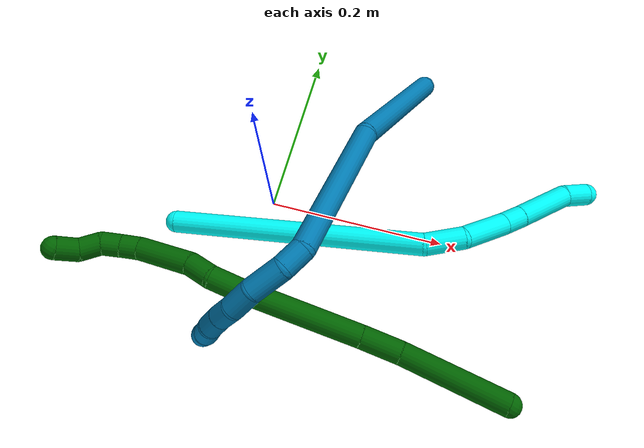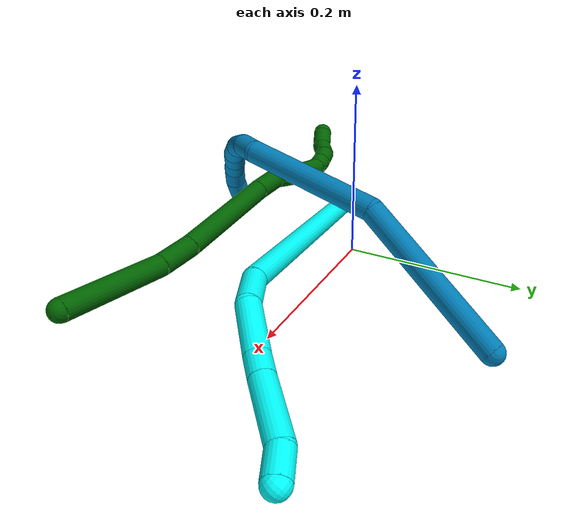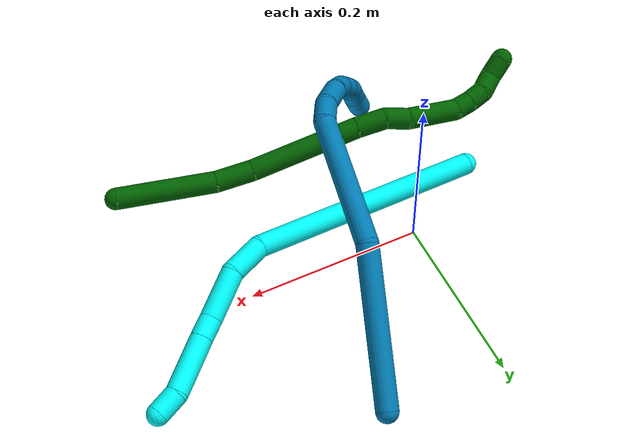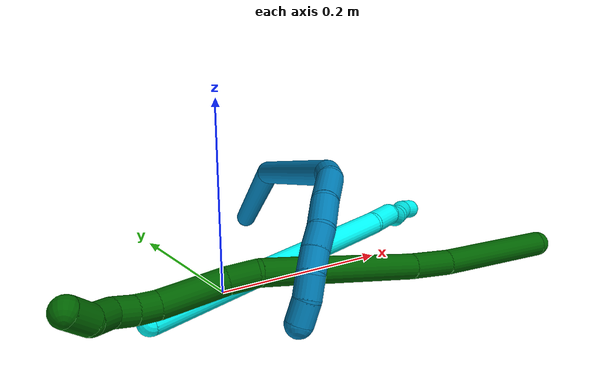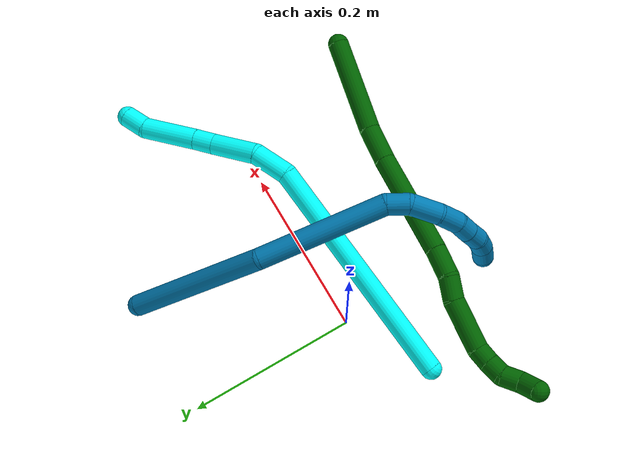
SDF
<sdf version="1.7">
 <world name="default">
  <model name="photoneo_s_sensor">
   <static>1</static>
   <pose>0 0 2 1.57079 1.57079 3.14159</pose>
   <link name="link">
    <inertial><mass>0.1</mass></inertial>
    <sensor name="sensor" type="depth">
     <update_rate>30</update_rate>
     <camera>
      <horizontal_fov>1.22</horizontal_fov>
      <image><width>1920</width><height>1200</height><format>B8G8R8</format></image>
      <clip><near>0.1</near><far>2</far></clip>
      <depth_camera><output>points</output></depth_camera>
     </camera>
     <plugin name="camera_plugin" filename="libgazebo_ros_depth_camera.so">
      <baseline>0.2</baseline>
      <alwaysOn>1</alwaysOn>
      <updateRate>0.0</updateRate>
      <cameraName>camera_ir</cameraName>
      <imageTopicName>/camera/color/image_raw</imageTopicName>
      <cameraInfoTopicName>/camera/color/camera_info</cameraInfoTopicName>
      <depthImageTopicName>/camera/depth/image_raw</depthImageTopicName>
      <depthImageCameraInfoTopicName>/camera/depth/camera_info</depthImageCameraInfoTopicName>
      <pointCloudTopicName>/camera/depth/points</pointCloudTopicName>
      <frameName>fr_optical</frameName>
      <pointCloudCutoff>0.1</pointCloudCutoff>
      <pointCloudCutoffMax>2.0</pointCloudCutoffMax>
      <distortionK1>0</distortionK1>
      <distortionK2>0</distortionK2>
      <distortionK3>0</distortionK3>
      <distortionT1>0</distortionT1>
      <distortionT2>0</distortionT2>
      <CxPrime>0</CxPrime>
      <Cx>0</Cx>
      <Cy>0</Cy>
      <focalLength>0</focalLength>
      <hackBaseline>0</hackBaseline>
     </plugin>
    </sensor>
   </link>
  </model>
  <model name="bin">
   <static>1</static>
   <link name="bottom">
    <collision name="collision-bottom">
     <pose>0 0 -0.01 0 -0 0</pose>
     <geometry><box><size>0.8 0.6 0.02</size></box></geometry>
     <surface>
      <friction><ode><mu>100</mu><mu2>100</mu2></ode></friction>
      <contact><collide_bitmask>65535</collide_bitmask></contact>
     </surface>
    </collision>
   </link>
   <link name="west_wall">
    <collision name="collision-west_wall">
     <pose>-0.41 0 0.1 0 -0 0</pose>
     <geometry><box><size>0.02 0.6 0.2</size></box></geometry>
     <surface>
      <friction><ode><mu>100</mu><mu2>100</mu2></ode></friction>
      <contact><collide_bitmask>65535</collide_bitmask></contact>
     </surface>
    </collision>
   </link>
   <link name="east_wall">
    <collision name="collision-east_wall">
     <pose>0.41 0 0.1 0 -0 0</pose>
     <geometry><box><size>0.02 0.6 0.2</size></box></geometry>
     <surface>
      <friction><ode><mu>100</mu><mu2>100</mu2></ode></friction>
      <contact><collide_bitmask>65535</collide_bitmask></contact>
     </surface>
    </collision>
   </link>
   <link name="south_wall">
    <collision name="collision-south_wall">
     <pose>0 -0.31 0.1 0 -0 0</pose>
     <geometry><box><size>0.8 0.02 0.2</size></box></geometry>
     <surface>
      <friction><ode><mu>100</mu><mu2>100</mu2></ode></friction>
      <contact><collide_bitmask>65535</collide_bitmask></contact>
     </surface>
    </collision>
   </link>
   <link name="north_wall">
    <collision name="collision-north_wall">
     <pose>0 0.31 0.1 0 -0 0</pose>
     <geometry><box><size>0.8 0.02 0.2</size></box></geometry>
     <surface>
      <friction><ode><mu>100</mu><mu2>100</mu2></ode></friction>
      <contact><collide_bitmask>65535</collide_bitmask></contact>
     </surface>
    </collision>
   </link>
  </model>
  <model name="3">
   <static>0</static>
   <link name="3">
    <collision name="collision-cylinder-e_1_1_4">
     <pose>0.124566 0.065497 0.00146 -1.5485 1.08662 -1.06699</pose>
     <geometry><cylinder><radius>0.0125</radius><length>0.281487</length></cylinder></geometry>
     <surface>
      <friction><ode><mu>1.16</mu><mu2>1.16</mu2><slip1>0</slip1><slip2>0</slip2></ode></friction>
      <contact><ode><kp>1e+06</kp><kd>1</kd><max_vel>0</max_vel><min_depth>0.001</min_depth></ode></contact>
     </surface>
    </collision>
    <visual name="visual-cylinder-e_1_1_4">
     <pose>0.124566 0.065497 0.00146 -1.5485 1.08662 -1.06699</pose>
     <geometry><cylinder><radius>0.0125</radius><length>0.281487</length></cylinder></geometry>
     <material><ambient>0.003922 1 0.996078 1</ambient></material>
    </visual>
    <collision name="collision-cylinder-e_2_4_5">
     <pose>0.266593 0.142043 -0.004276 -2.14814 0.923995 -1.486</pose>
     <geometry><cylinder><radius>0.0125</radius><length>0.04376</length></cylinder></geometry>
     <surface>
      <friction><ode><mu>1.16</mu><mu2>1.16</mu2><slip1>0</slip1><slip2>0</slip2></ode></friction>
      <contact><ode><kp>1e+06</kp><kd>1</kd><max_vel>0</max_vel><min_depth>0.001</min_depth></ode></contact>
     </surface>
    </collision>
    <visual name="visual-cylinder-e_2_4_5">
     <pose>0.266593 0.142043 -0.004276 -2.14814 0.923995 -1.486</pose>
     <geometry><cylinder><radius>0.0125</radius><length>0.04376</length></cylinder></geometry>
     <material><ambient>0.003922 1 0.996078 1</ambient></material>
    </visual>
    <collision name="collision-cylinder-e_3_5_6">
     <pose>0.303266 0.162296 -0.029986 -2.68021 0.748735 -2.06399</pose>
     <geometry><cylinder><radius>0.0125</radius><length>0.056446</length></cylinder></geometry>
     <surface>
      <friction><ode><mu>1.16</mu><mu2>1.16</mu2><slip1>0</slip1><slip2>0</slip2></ode></friction>
      <contact><ode><kp>1e+06</kp><kd>1</kd><max_vel>0</max_vel><min_depth>0.001</min_depth></ode></contact>
     </surface>
    </collision>
    <visual name="visual-cylinder-e_3_5_6">
     <pose>0.303266 0.162296 -0.029986 -2.68021 0.748735 -2.06399</pose>
     <geometry><cylinder><radius>0.0125</radius><length>0.056446</length></cylinder></geometry>
     <material><ambient>0.003922 1 0.996078 1</ambient></material>
    </visual>
    <collision name="collision-cylinder-e_4_6_7">
     <pose>0.330447 0.177056 -0.056005 -2.50445 0.70644 -1.68201</pose>
     <geometry><cylinder><radius>0.0125</radius><length>0.024555</length></cylinder></geometry>
     <surface>
      <friction><ode><mu>1.16</mu><mu2>1.16</mu2><slip1>0</slip1><slip2>0</slip2></ode></friction>
      <contact><ode><kp>1e+06</kp><kd>1</kd><max_vel>0</max_vel><min_depth>0.001</min_depth></ode></contact>
     </surface>
    </collision>
    <visual name="visual-cylinder-e_4_6_7">
     <pose>0.330447 0.177056 -0.056005 -2.50445 0.70644 -1.68201</pose>
     <geometry><cylinder><radius>0.0125</radius><length>0.024555</length></cylinder></geometry>
     <material><ambient>0.003922 1 0.996078 1</ambient></material>
    </visual>
    <collision name="collision-cylinder-e_5_7_8">
     <pose>0.358796 0.197767 -0.084035 -2.5055 0.674015 -1.63303</pose>
     <geometry><cylinder><radius>0.0125</radius><length>0.065306</length></cylinder></geometry>
     <surface>
      <friction><ode><mu>1.16</mu><mu2>1.16</mu2><slip1>0</slip1><slip2>0</slip2></ode></friction>
      <contact><ode><kp>1e+06</kp><kd>1</kd><max_vel>0</max_vel><min_depth>0.001</min_depth></ode></contact>
     </surface>
    </collision>
    <visual name="visual-cylinder-e_5_7_8">
     <pose>0.358796 0.197767 -0.084035 -2.5055 0.674015 -1.63303</pose>
     <geometry><cylinder><radius>0.0125</radius><length>0.065306</length></cylinder></geometry>
     <material><ambient>0.003922 1 0.996078 1</ambient></material>
    </visual>
    <collision name="collision-cylinder-e_6_8_2">
     <pose>0.391183 0.217926 -0.110311 -2.42584 1.00506 -1.9466</pose>
     <geometry><cylinder><radius>0.0125</radius><length>0.028446</length></cylinder></geometry>
     <surface>
      <friction><ode><mu>1.16</mu><mu2>1.16</mu2><slip1>0</slip1><slip2>0</slip2></ode></friction>
      <contact><ode><kp>1e+06</kp><kd>1</kd><max_vel>0</max_vel><min_depth>0.001</min_depth></ode></contact>
     </surface>
    </collision>
    <visual name="visual-cylinder-e_6_8_2">
     <pose>0.391183 0.217926 -0.110311 -2.42584 1.00506 -1.9466</pose>
     <geometry><cylinder><radius>0.0125</radius><length>0.028446</length></cylinder></geometry>
     <material><ambient>0.003922 1 0.996078 1</ambient></material>
    </visual>
    <collision name="collision-sphere-2">
     <pose>0.40319 0.222929 -0.116064 0 -0 0</pose>
     <geometry><sphere><radius>0.0125</radius></sphere></geometry>
     <surface>
      <friction><ode><mu>1.16</mu><mu2>1.16</mu2><slip1>0</slip1><slip2>0</slip2></ode></friction>
      <contact><ode><kp>1e+06</kp><kd>1</kd><max_vel>0</max_vel><min_depth>0.001</min_depth></ode></contact>
     </surface>
    </collision>
    <visual name="visual-sphere-2">
     <pose>0.40319 0.222929 -0.116064 0 -0 0</pose>
     <geometry><sphere><radius>0.0125</radius></sphere></geometry>
     <material><ambient>0.003922 1 0.996078 1</ambient></material>
    </visual>
    <collision name="collision-sphere-4">
     <pose>0.249132 0.130995 0.002921 0 -0 0</pose>
     <geometry><sphere><radius>0.0125</radius></sphere></geometry>
     <surface>
      <friction><ode><mu>1.16</mu><mu2>1.16</mu2><slip1>0</slip1><slip2>0</slip2></ode></friction>
      <contact><ode><kp>1e+06</kp><kd>1</kd><max_vel>0</max_vel><min_depth>0.001</min_depth></ode></contact>
     </surface>
    </collision>
    <visual name="visual-sphere-4">
     <pose>0.249132 0.130995 0.002921 0 -0 0</pose>
     <geometry><sphere><radius>0.0125</radius></sphere></geometry>
     <material><ambient>0.003922 1 0.996078 1</ambient></material>
    </visual>
    <collision name="collision-sphere-1">
     <geometry><sphere><radius>0.0125</radius></sphere></geometry>
     <surface>
      <friction><ode><mu>1.16</mu><mu2>1.16</mu2><slip1>0</slip1><slip2>0</slip2></ode></friction>
      <contact><ode><kp>1e+06</kp><kd>1</kd><max_vel>0</max_vel><min_depth>0.001</min_depth></ode></contact>
     </surface>
    </collision>
    <visual name="visual-sphere-1">
     <geometry><sphere><radius>0.0125</radius></sphere></geometry>
     <material><ambient>0.003922 1 0.996078 1</ambient></material>
    </visual>
    <collision name="collision-sphere-8">
     <pose>0.379175 0.212923 -0.104558 0 -0 0</pose>
     <geometry><sphere><radius>0.0125</radius></sphere></geometry>
     <surface>
      <friction><ode><mu>1.16</mu><mu2>1.16</mu2><slip1>0</slip1><slip2>0</slip2></ode></friction>
      <contact><ode><kp>1e+06</kp><kd>1</kd><max_vel>0</max_vel><min_depth>0.001</min_depth></ode></contact>
     </surface>
    </collision>
    <visual name="visual-sphere-8">
     <pose>0.379175 0.212923 -0.104558 0 -0 0</pose>
     <geometry><sphere><radius>0.0125</radius></sphere></geometry>
     <material><ambient>0.003922 1 0.996078 1</ambient></material>
    </visual>
    <collision name="collision-sphere-5">
     <pose>0.284054 0.153092 -0.011473 0 -0 0</pose>
     <geometry><sphere><radius>0.0125</radius></sphere></geometry>
     <surface>
      <friction><ode><mu>1.16</mu><mu2>1.16</mu2><slip1>0</slip1><slip2>0</slip2></ode></friction>
      <contact><ode><kp>1e+06</kp><kd>1</kd><max_vel>0</max_vel><min_depth>0.001</min_depth></ode></contact>
     </surface>
    </collision>
    <visual name="visual-sphere-5">
     <pose>0.284054 0.153092 -0.011473 0 -0 0</pose>
     <geometry><sphere><radius>0.0125</radius></sphere></geometry>
     <material><ambient>0.003922 1 0.996078 1</ambient></material>
    </visual>
    <collision name="collision-sphere-6">
     <pose>0.322477 0.1715 -0.048499 0 -0 0</pose>
     <geometry><sphere><radius>0.0125</radius></sphere></geometry>
     <surface>
      <friction><ode><mu>1.16</mu><mu2>1.16</mu2><slip1>0</slip1><slip2>0</slip2></ode></friction>
      <contact><ode><kp>1e+06</kp><kd>1</kd><max_vel>0</max_vel><min_depth>0.001</min_depth></ode></contact>
     </surface>
    </collision>
    <visual name="visual-sphere-6">
     <pose>0.322477 0.1715 -0.048499 0 -0 0</pose>
     <geometry><sphere><radius>0.0125</radius></sphere></geometry>
     <material><ambient>0.003922 1 0.996078 1</ambient></material>
    </visual>
    <collision name="collision-sphere-7">
     <pose>0.338416 0.182612 -0.063512 0 -0 0</pose>
     <geometry><sphere><radius>0.0125</radius></sphere></geometry>
     <surface>
      <friction><ode><mu>1.16</mu><mu2>1.16</mu2><slip1>0</slip1><slip2>0</slip2></ode></friction>
      <contact><ode><kp>1e+06</kp><kd>1</kd><max_vel>0</max_vel><min_depth>0.001</min_depth></ode></contact>
     </surface>
    </collision>
    <visual name="visual-sphere-7">
     <pose>0.338416 0.182612 -0.063512 0 -0 0</pose>
     <geometry><sphere><radius>0.0125</radius></sphere></geometry>
     <material><ambient>0.003922 1 0.996078 1</ambient></material>
    </visual>
    <inertial>
     <pose>0.213042 0.114551 -0.022939 0 -0 0</pose>
     <mass>0.5</mass>
     <inertia>
      <ixx>-0.000358</ixx>
      <ixy>0</ixy>
      <ixz>0</ixz>
      <iyy>0.000716</iyy>
      <iyz>0</iyz>
      <izz>-0.002597</izz>
     </inertia>
    </inertial>
   </link>
   <pose>-0.098086 -0.0546 0.012792 0.937605 0.27098 -0.164772</pose>
  </model>
  <model name="6">
   <static>0</static>
   <link name="6">
    <collision name="collision-cylinder-e_1_1_4">
     <pose>-0.045451 0.032939 0.011695 -1.22963 -0.915226 0.669326</pose>
     <geometry><cylinder><radius>0.0125</radius><length>0.114675</length></cylinder></geometry>
     <surface>
      <friction><ode><mu>1.16</mu><mu2>1.16</mu2><slip1>0</slip1><slip2>0</slip2></ode></friction>
      <contact><ode><kp>1e+06</kp><kd>1</kd><max_vel>0</max_vel><min_depth>0.001</min_depth></ode></contact>
     </surface>
    </collision>
    <visual name="visual-cylinder-e_1_1_4">
     <pose>-0.045451 0.032939 0.011695 -1.22963 -0.915226 0.669326</pose>
     <geometry><cylinder><radius>0.0125</radius><length>0.114675</length></cylinder></geometry>
     <material><ambient>0 0.392157 0.003922 1</ambient></material>
    </visual>
    <collision name="collision-cylinder-e_2_4_5">
     <pose>-0.10614 0.080696 0.028391 -1.24531 -0.772362 0.568031</pose>
     <geometry><cylinder><radius>0.0125</radius><length>0.04367</length></cylinder></geometry>
     <surface>
      <friction><ode><mu>1.16</mu><mu2>1.16</mu2><slip1>0</slip1><slip2>0</slip2></ode></friction>
      <contact><ode><kp>1e+06</kp><kd>1</kd><max_vel>0</max_vel><min_depth>0.001</min_depth></ode></contact>
     </surface>
    </collision>
    <visual name="visual-cylinder-e_2_4_5">
     <pose>-0.10614 0.080696 0.028391 -1.24531 -0.772362 0.568031</pose>
     <geometry><cylinder><radius>0.0125</radius><length>0.04367</length></cylinder></geometry>
     <material><ambient>0 0.392157 0.003922 1</ambient></material>
    </visual>
    <collision name="collision-cylinder-e_3_5_6">
     <pose>-0.162338 0.143339 0.048421 -1.26631 -0.685081 0.511974</pose>
     <geometry><cylinder><radius>0.0125</radius><length>0.129474</length></cylinder></geometry>
     <surface>
      <friction><ode><mu>1.16</mu><mu2>1.16</mu2><slip1>0</slip1><slip2>0</slip2></ode></friction>
      <contact><ode><kp>1e+06</kp><kd>1</kd><max_vel>0</max_vel><min_depth>0.001</min_depth></ode></contact>
     </surface>
    </collision>
    <visual name="visual-cylinder-e_3_5_6">
     <pose>-0.162338 0.143339 0.048421 -1.26631 -0.685081 0.511974</pose>
     <geometry><cylinder><radius>0.0125</radius><length>0.129474</length></cylinder></geometry>
     <material><ambient>0 0.392157 0.003922 1</ambient></material>
    </visual>
    <collision name="collision-cylinder-e_4_6_7">
     <pose>-0.215228 0.203574 0.066786 -1.30821 -0.748197 0.58474</pose>
     <geometry><cylinder><radius>0.0125</radius><length>0.035067</length></cylinder></geometry>
     <surface>
      <friction><ode><mu>1.16</mu><mu2>1.16</mu2><slip1>0</slip1><slip2>0</slip2></ode></friction>
      <contact><ode><kp>1e+06</kp><kd>1</kd><max_vel>0</max_vel><min_depth>0.001</min_depth></ode></contact>
     </surface>
    </collision>
    <visual name="visual-cylinder-e_4_6_7">
     <pose>-0.215228 0.203574 0.066786 -1.30821 -0.748197 0.58474</pose>
     <geometry><cylinder><radius>0.0125</radius><length>0.035067</length></cylinder></geometry>
     <material><ambient>0 0.392157 0.003922 1</ambient></material>
    </visual>
    <collision name="collision-cylinder-e_5_7_8">
     <pose>-0.239456 0.222224 0.071889 -1.2949 -1.08553 0.855881</pose>
     <geometry><cylinder><radius>0.0125</radius><length>0.027808</length></cylinder></geometry>
     <surface>
      <friction><ode><mu>1.16</mu><mu2>1.16</mu2><slip1>0</slip1><slip2>0</slip2></ode></friction>
      <contact><ode><kp>1e+06</kp><kd>1</kd><max_vel>0</max_vel><min_depth>0.001</min_depth></ode></contact>
     </surface>
    </collision>
    <visual name="visual-cylinder-e_5_7_8">
     <pose>-0.239456 0.222224 0.071889 -1.2949 -1.08553 0.855881</pose>
     <geometry><cylinder><radius>0.0125</radius><length>0.027808</length></cylinder></geometry>
     <material><ambient>0 0.392157 0.003922 1</ambient></material>
    </visual>
    <collision name="collision-cylinder-e_6_8_9">
     <pose>-0.275647 0.244106 0.084341 -0.9715 -0.900429 0.499667</pose>
     <geometry><cylinder><radius>0.0125</radius><length>0.060982</length></cylinder></geometry>
     <surface>
      <friction><ode><mu>1.16</mu><mu2>1.16</mu2><slip1>0</slip1><slip2>0</slip2></ode></friction>
      <contact><ode><kp>1e+06</kp><kd>1</kd><max_vel>0</max_vel><min_depth>0.001</min_depth></ode></contact>
     </surface>
    </collision>
    <visual name="visual-cylinder-e_6_8_9">
     <pose>-0.275647 0.244106 0.084341 -0.9715 -0.900429 0.499667</pose>
     <geometry><cylinder><radius>0.0125</radius><length>0.060982</length></cylinder></geometry>
     <material><ambient>0 0.392157 0.003922 1</ambient></material>
    </visual>
    <collision name="collision-cylinder-e_7_9_10">
     <pose>-0.305263 0.266876 0.099468 -1.01345 -0.598112 0.338974</pose>
     <geometry><cylinder><radius>0.0125</radius><length>0.020326</length></cylinder></geometry>
     <surface>
      <friction><ode><mu>1.16</mu><mu2>1.16</mu2><slip1>0</slip1><slip2>0</slip2></ode></friction>
      <contact><ode><kp>1e+06</kp><kd>1</kd><max_vel>0</max_vel><min_depth>0.001</min_depth></ode></contact>
     </surface>
    </collision>
    <visual name="visual-cylinder-e_7_9_10">
     <pose>-0.305263 0.266876 0.099468 -1.01345 -0.598112 0.338974</pose>
     <geometry><cylinder><radius>0.0125</radius><length>0.020326</length></cylinder></geometry>
     <material><ambient>0 0.392157 0.003922 1</ambient></material>
    </visual>
    <collision name="collision-cylinder-e_8_10_11">
     <pose>-0.315469 0.282022 0.108181 -1.0814 -0.458517 0.2784</pose>
     <geometry><cylinder><radius>0.0125</radius><length>0.02026</length></cylinder></geometry>
     <surface>
      <friction><ode><mu>1.16</mu><mu2>1.16</mu2><slip1>0</slip1><slip2>0</slip2></ode></friction>
      <contact><ode><kp>1e+06</kp><kd>1</kd><max_vel>0</max_vel><min_depth>0.001</min_depth></ode></contact>
     </surface>
    </collision>
    <visual name="visual-cylinder-e_8_10_11">
     <pose>-0.315469 0.282022 0.108181 -1.0814 -0.458517 0.2784</pose>
     <geometry><cylinder><radius>0.0125</radius><length>0.02026</length></cylinder></geometry>
     <material><ambient>0 0.392157 0.003922 1</ambient></material>
    </visual>
    <collision name="collision-cylinder-e_9_11_12">
     <pose>-0.321478 0.29796 0.120785 -0.760033 -0.131878 0.05274</pose>
     <geometry><cylinder><radius>0.0125</radius><length>0.023197</length></cylinder></geometry>
     <surface>
      <friction><ode><mu>1.16</mu><mu2>1.16</mu2><slip1>0</slip1><slip2>0</slip2></ode></friction>
      <contact><ode><kp>1e+06</kp><kd>1</kd><max_vel>0</max_vel><min_depth>0.001</min_depth></ode></contact>
     </surface>
    </collision>
    <visual name="visual-cylinder-e_9_11_12">
     <pose>-0.321478 0.29796 0.120785 -0.760033 -0.131878 0.05274</pose>
     <geometry><cylinder><radius>0.0125</radius><length>0.023197</length></cylinder></geometry>
     <material><ambient>0 0.392157 0.003922 1</ambient></material>
    </visual>
    <collision name="collision-cylinder-e_10_12_2">
     <pose>-0.323657 0.317536 0.1329 -1.25705 -0.053284 0.038734</pose>
     <geometry><cylinder><radius>0.0125</radius><length>0.02454</length></cylinder></geometry>
     <surface>
      <friction><ode><mu>1.16</mu><mu2>1.16</mu2><slip1>0</slip1><slip2>0</slip2></ode></friction>
      <contact><ode><kp>1e+06</kp><kd>1</kd><max_vel>0</max_vel><min_depth>0.001</min_depth></ode></contact>
     </surface>
    </collision>
    <visual name="visual-cylinder-e_10_12_2">
     <pose>-0.323657 0.317536 0.1329 -1.25705 -0.053284 0.038734</pose>
     <geometry><cylinder><radius>0.0125</radius><length>0.02454</length></cylinder></geometry>
     <material><ambient>0 0.392157 0.003922 1</ambient></material>
    </visual>
    <collision name="collision-sphere-2">
     <pose>-0.32431 0.32919 0.136682 0 -0 0</pose>
     <geometry><sphere><radius>0.0125</radius></sphere></geometry>
     <surface>
      <friction><ode><mu>1.16</mu><mu2>1.16</mu2><slip1>0</slip1><slip2>0</slip2></ode></friction>
      <contact><ode><kp>1e+06</kp><kd>1</kd><max_vel>0</max_vel><min_depth>0.001</min_depth></ode></contact>
     </surface>
    </collision>
    <visual name="visual-sphere-2">
     <pose>-0.32431 0.32919 0.136682 0 -0 0</pose>
     <geometry><sphere><radius>0.0125</radius></sphere></geometry>
     <material><ambient>0 0.392157 0.003922 1</ambient></material>
    </visual>
    <collision name="collision-sphere-12">
     <pose>-0.323003 0.305882 0.129119 0 -0 0</pose>
     <geometry><sphere><radius>0.0125</radius></sphere></geometry>
     <surface>
      <friction><ode><mu>1.16</mu><mu2>1.16</mu2><slip1>0</slip1><slip2>0</slip2></ode></friction>
      <contact><ode><kp>1e+06</kp><kd>1</kd><max_vel>0</max_vel><min_depth>0.001</min_depth></ode></contact>
     </surface>
    </collision>
    <visual name="visual-sphere-12">
     <pose>-0.323003 0.305882 0.129119 0 -0 0</pose>
     <geometry><sphere><radius>0.0125</radius></sphere></geometry>
     <material><ambient>0 0.392157 0.003922 1</ambient></material>
    </visual>
    <collision name="collision-sphere-11">
     <pose>-0.319953 0.290039 0.112451 0 -0 0</pose>
     <geometry><sphere><radius>0.0125</radius></sphere></geometry>
     <surface>
      <friction><ode><mu>1.16</mu><mu2>1.16</mu2><slip1>0</slip1><slip2>0</slip2></ode></friction>
      <contact><ode><kp>1e+06</kp><kd>1</kd><max_vel>0</max_vel><min_depth>0.001</min_depth></ode></contact>
     </surface>
    </collision>
    <visual name="visual-sphere-11">
     <pose>-0.319953 0.290039 0.112451 0 -0 0</pose>
     <geometry><sphere><radius>0.0125</radius></sphere></geometry>
     <material><ambient>0 0.392157 0.003922 1</ambient></material>
    </visual>
    <collision name="collision-sphere-10">
     <pose>-0.310985 0.274004 0.103911 0 -0 0</pose>
     <geometry><sphere><radius>0.0125</radius></sphere></geometry>
     <surface>
      <friction><ode><mu>1.16</mu><mu2>1.16</mu2><slip1>0</slip1><slip2>0</slip2></ode></friction>
      <contact><ode><kp>1e+06</kp><kd>1</kd><max_vel>0</max_vel><min_depth>0.001</min_depth></ode></contact>
     </surface>
    </collision>
    <visual name="visual-sphere-10">
     <pose>-0.310985 0.274004 0.103911 0 -0 0</pose>
     <geometry><sphere><radius>0.0125</radius></sphere></geometry>
     <material><ambient>0 0.392157 0.003922 1</ambient></material>
    </visual>
    <collision name="collision-sphere-9">
     <pose>-0.29954 0.259749 0.095026 0 -0 0</pose>
     <geometry><sphere><radius>0.0125</radius></sphere></geometry>
     <surface>
      <friction><ode><mu>1.16</mu><mu2>1.16</mu2><slip1>0</slip1><slip2>0</slip2></ode></friction>
      <contact><ode><kp>1e+06</kp><kd>1</kd><max_vel>0</max_vel><min_depth>0.001</min_depth></ode></contact>
     </surface>
    </collision>
    <visual name="visual-sphere-9">
     <pose>-0.29954 0.259749 0.095026 0 -0 0</pose>
     <geometry><sphere><radius>0.0125</radius></sphere></geometry>
     <material><ambient>0 0.392157 0.003922 1</ambient></material>
    </visual>
    <collision name="collision-sphere-4">
     <pose>-0.090903 0.065878 0.02339 0 -0 0</pose>
     <geometry><sphere><radius>0.0125</radius></sphere></geometry>
     <surface>
      <friction><ode><mu>1.16</mu><mu2>1.16</mu2><slip1>0</slip1><slip2>0</slip2></ode></friction>
      <contact><ode><kp>1e+06</kp><kd>1</kd><max_vel>0</max_vel><min_depth>0.001</min_depth></ode></contact>
     </surface>
    </collision>
    <visual name="visual-sphere-4">
     <pose>-0.090903 0.065878 0.02339 0 -0 0</pose>
     <geometry><sphere><radius>0.0125</radius></sphere></geometry>
     <material><ambient>0 0.392157 0.003922 1</ambient></material>
    </visual>
    <collision name="collision-sphere-1">
     <geometry><sphere><radius>0.0125</radius></sphere></geometry>
     <surface>
      <friction><ode><mu>1.16</mu><mu2>1.16</mu2><slip1>0</slip1><slip2>0</slip2></ode></friction>
      <contact><ode><kp>1e+06</kp><kd>1</kd><max_vel>0</max_vel><min_depth>0.001</min_depth></ode></contact>
     </surface>
    </collision>
    <visual name="visual-sphere-1">
     <geometry><sphere><radius>0.0125</radius></sphere></geometry>
     <material><ambient>0 0.392157 0.003922 1</ambient></material>
    </visual>
    <collision name="collision-sphere-8">
     <pose>-0.251754 0.228464 0.073655 0 -0 0</pose>
     <geometry><sphere><radius>0.0125</radius></sphere></geometry>
     <surface>
      <friction><ode><mu>1.16</mu><mu2>1.16</mu2><slip1>0</slip1><slip2>0</slip2></ode></friction>
      <contact><ode><kp>1e+06</kp><kd>1</kd><max_vel>0</max_vel><min_depth>0.001</min_depth></ode></contact>
     </surface>
    </collision>
    <visual name="visual-sphere-8">
     <pose>-0.251754 0.228464 0.073655 0 -0 0</pose>
     <geometry><sphere><radius>0.0125</radius></sphere></geometry>
     <material><ambient>0 0.392157 0.003922 1</ambient></material>
    </visual>
    <collision name="collision-sphere-5">
     <pose>-0.121377 0.095515 0.033392 0 -0 0</pose>
     <geometry><sphere><radius>0.0125</radius></sphere></geometry>
     <surface>
      <friction><ode><mu>1.16</mu><mu2>1.16</mu2><slip1>0</slip1><slip2>0</slip2></ode></friction>
      <contact><ode><kp>1e+06</kp><kd>1</kd><max_vel>0</max_vel><min_depth>0.001</min_depth></ode></contact>
     </surface>
    </collision>
    <visual name="visual-sphere-5">
     <pose>-0.121377 0.095515 0.033392 0 -0 0</pose>
     <geometry><sphere><radius>0.0125</radius></sphere></geometry>
     <material><ambient>0 0.392157 0.003922 1</ambient></material>
    </visual>
    <collision name="collision-sphere-6">
     <pose>-0.2033 0.191164 0.063451 0 -0 0</pose>
     <geometry><sphere><radius>0.0125</radius></sphere></geometry>
     <surface>
      <friction><ode><mu>1.16</mu><mu2>1.16</mu2><slip1>0</slip1><slip2>0</slip2></ode></friction>
      <contact><ode><kp>1e+06</kp><kd>1</kd><max_vel>0</max_vel><min_depth>0.001</min_depth></ode></contact>
     </surface>
    </collision>
    <visual name="visual-sphere-6">
     <pose>-0.2033 0.191164 0.063451 0 -0 0</pose>
     <geometry><sphere><radius>0.0125</radius></sphere></geometry>
     <material><ambient>0 0.392157 0.003922 1</ambient></material>
    </visual>
    <collision name="collision-sphere-7">
     <pose>-0.227157 0.215984 0.070122 0 -0 0</pose>
     <geometry><sphere><radius>0.0125</radius></sphere></geometry>
     <surface>
      <friction><ode><mu>1.16</mu><mu2>1.16</mu2><slip1>0</slip1><slip2>0</slip2></ode></friction>
      <contact><ode><kp>1e+06</kp><kd>1</kd><max_vel>0</max_vel><min_depth>0.001</min_depth></ode></contact>
     </surface>
    </collision>
    <visual name="visual-sphere-7">
     <pose>-0.227157 0.215984 0.070122 0 -0 0</pose>
     <geometry><sphere><radius>0.0125</radius></sphere></geometry>
     <material><ambient>0 0.392157 0.003922 1</ambient></material>
    </visual>
    <inertial>
     <pose>-0.179756 0.159814 0.057223 0 -0 0</pose>
     <mass>0.5</mass>
     <inertia>
      <ixx>0.000323</ixx>
      <ixy>0</ixy>
      <ixz>0</ixz>
      <iyy>0.000389</iyy>
      <iyz>0</iyz>
      <izz>2.3e-05</izz>
     </inertia>
    </inertial>
   </link>
   <pose>0.293296 -0.162487 0.040156 2.05253 -0.527531 -0.665536</pose>
  </model>
  <model name="9">
   <static>0</static>
   <link name="9">
    <collision name="collision-cylinder-e_1_1_4">
     <pose>-0.038696 -0.077263 -0.011689 1.72094 -0.459797 -0.531347</pose>
     <geometry><cylinder><radius>0.0125</radius><length>0.174397</length></cylinder></geometry>
     <surface>
      <friction><ode><mu>1.16</mu><mu2>1.16</mu2><slip1>0</slip1><slip2>0</slip2></ode></friction>
      <contact><ode><kp>1e+06</kp><kd>1</kd><max_vel>0</max_vel><min_depth>0.001</min_depth></ode></contact>
     </surface>
    </collision>
    <visual name="visual-cylinder-e_1_1_4">
     <pose>-0.038696 -0.077263 -0.011689 1.72094 -0.459797 -0.531347</pose>
     <geometry><cylinder><radius>0.0125</radius><length>0.174397</length></cylinder></geometry>
     <material><ambient>0 0.490196 0.709804 1</ambient></material>
    </visual>
    <collision name="collision-cylinder-e_2_4_5">
     <pose>-0.089099 -0.22343 -0.054844 1.99919 -0.153346 -0.23795</pose>
     <geometry><cylinder><radius>0.0125</radius><length>0.153295</length></cylinder></geometry>
     <surface>
      <friction><ode><mu>1.16</mu><mu2>1.16</mu2><slip1>0</slip1><slip2>0</slip2></ode></friction>
      <contact><ode><kp>1e+06</kp><kd>1</kd><max_vel>0</max_vel><min_depth>0.001</min_depth></ode></contact>
     </surface>
    </collision>
    <visual name="visual-cylinder-e_2_4_5">
     <pose>-0.089099 -0.22343 -0.054844 1.99919 -0.153346 -0.23795</pose>
     <geometry><cylinder><radius>0.0125</radius><length>0.153295</length></cylinder></geometry>
     <material><ambient>0 0.490196 0.709804 1</ambient></material>
    </visual>
    <collision name="collision-cylinder-e_3_5_6">
     <pose>-0.105323 -0.300805 -0.094975 2.36743 -0.356764 -0.832848</pose>
     <geometry><cylinder><radius>0.0125</radius><length>0.025864</length></cylinder></geometry>
     <surface>
      <friction><ode><mu>1.16</mu><mu2>1.16</mu2><slip1>0</slip1><slip2>0</slip2></ode></friction>
      <contact><ode><kp>1e+06</kp><kd>1</kd><max_vel>0</max_vel><min_depth>0.001</min_depth></ode></contact>
     </surface>
    </collision>
    <visual name="visual-cylinder-e_3_5_6">
     <pose>-0.105323 -0.300805 -0.094975 2.36743 -0.356764 -0.832848</pose>
     <geometry><cylinder><radius>0.0125</radius><length>0.025864</length></cylinder></geometry>
     <material><ambient>0 0.490196 0.709804 1</ambient></material>
    </visual>
    <collision name="collision-cylinder-e_4_6_7">
     <pose>-0.115394 -0.315053 -0.119916 2.80058 -0.311146 -1.47763</pose>
     <geometry><cylinder><radius>0.0125</radius><length>0.036286</length></cylinder></geometry>
     <surface>
      <friction><ode><mu>1.16</mu><mu2>1.16</mu2><slip1>0</slip1><slip2>0</slip2></ode></friction>
      <contact><ode><kp>1e+06</kp><kd>1</kd><max_vel>0</max_vel><min_depth>0.001</min_depth></ode></contact>
     </surface>
    </collision>
    <visual name="visual-cylinder-e_4_6_7">
     <pose>-0.115394 -0.315053 -0.119916 2.80058 -0.311146 -1.47763</pose>
     <geometry><cylinder><radius>0.0125</radius><length>0.036286</length></cylinder></geometry>
     <material><ambient>0 0.490196 0.709804 1</ambient></material>
    </visual>
    <collision name="collision-cylinder-e_5_7_8">
     <pose>-0.122339 -0.322734 -0.149976 3.00423 -0.099597 -1.25397</pose>
     <geometry><cylinder><radius>0.0125</radius><length>0.027966</length></cylinder></geometry>
     <surface>
      <friction><ode><mu>1.16</mu><mu2>1.16</mu2><slip1>0</slip1><slip2>0</slip2></ode></friction>
      <contact><ode><kp>1e+06</kp><kd>1</kd><max_vel>0</max_vel><min_depth>0.001</min_depth></ode></contact>
     </surface>
    </collision>
    <visual name="visual-cylinder-e_5_7_8">
     <pose>-0.122339 -0.322734 -0.149976 3.00423 -0.099597 -1.25397</pose>
     <geometry><cylinder><radius>0.0125</radius><length>0.027966</length></cylinder></geometry>
     <material><ambient>0 0.490196 0.709804 1</ambient></material>
    </visual>
    <collision name="collision-cylinder-e_6_8_9">
     <pose>-0.124252 -0.323545 -0.174128 -3.03646 -0.05007 0.888354</pose>
     <geometry><cylinder><radius>0.0125</radius><length>0.02088</length></cylinder></geometry>
     <surface>
      <friction><ode><mu>1.16</mu><mu2>1.16</mu2><slip1>0</slip1><slip2>0</slip2></ode></friction>
      <contact><ode><kp>1e+06</kp><kd>1</kd><max_vel>0</max_vel><min_depth>0.001</min_depth></ode></contact>
     </surface>
    </collision>
    <visual name="visual-cylinder-e_6_8_9">
     <pose>-0.124252 -0.323545 -0.174128 -3.03646 -0.05007 0.888354</pose>
     <geometry><cylinder><radius>0.0125</radius><length>0.02088</length></cylinder></geometry>
     <material><ambient>0 0.490196 0.709804 1</ambient></material>
    </visual>
    <collision name="collision-cylinder-e_7_9_10">
     <pose>-0.124438 -0.321643 -0.194615 -3.0619 0.033148 -0.788059</pose>
     <geometry><cylinder><radius>0.0125</radius><length>0.020311</length></cylinder></geometry>
     <surface>
      <friction><ode><mu>1.16</mu><mu2>1.16</mu2><slip1>0</slip1><slip2>0</slip2></ode></friction>
      <contact><ode><kp>1e+06</kp><kd>1</kd><max_vel>0</max_vel><min_depth>0.001</min_depth></ode></contact>
     </surface>
    </collision>
    <visual name="visual-cylinder-e_7_9_10">
     <pose>-0.124438 -0.321643 -0.194615 -3.0619 0.033148 -0.788059</pose>
     <geometry><cylinder><radius>0.0125</radius><length>0.020311</length></cylinder></geometry>
     <material><ambient>0 0.490196 0.709804 1</ambient></material>
    </visual>
    <collision name="collision-cylinder-e_8_10_11">
     <pose>-0.121703 -0.31778 -0.214213 -2.8298 0.236252 -1.29349</pose>
     <geometry><cylinder><radius>0.0125</radius><length>0.02049</length></cylinder></geometry>
     <surface>
      <friction><ode><mu>1.16</mu><mu2>1.16</mu2><slip1>0</slip1><slip2>0</slip2></ode></friction>
      <contact><ode><kp>1e+06</kp><kd>1</kd><max_vel>0</max_vel><min_depth>0.001</min_depth></ode></contact>
     </surface>
    </collision>
    <visual name="visual-cylinder-e_8_10_11">
     <pose>-0.121703 -0.31778 -0.214213 -2.8298 0.236252 -1.29349</pose>
     <geometry><cylinder><radius>0.0125</radius><length>0.02049</length></cylinder></geometry>
     <material><ambient>0 0.490196 0.709804 1</ambient></material>
    </visual>
    <collision name="collision-cylinder-e_9_11_2">
     <pose>-0.117299 -0.309513 -0.232295 -2.59698 0.19689 -0.679908</pose>
     <geometry><cylinder><radius>0.0125</radius><length>0.020511</length></cylinder></geometry>
     <surface>
      <friction><ode><mu>1.16</mu><mu2>1.16</mu2><slip1>0</slip1><slip2>0</slip2></ode></friction>
      <contact><ode><kp>1e+06</kp><kd>1</kd><max_vel>0</max_vel><min_depth>0.001</min_depth></ode></contact>
     </surface>
    </collision>
    <visual name="visual-cylinder-e_9_11_2">
     <pose>-0.117299 -0.309513 -0.232295 -2.59698 0.19689 -0.679908</pose>
     <geometry><cylinder><radius>0.0125</radius><length>0.020511</length></cylinder></geometry>
     <material><ambient>0 0.490196 0.709804 1</ambient></material>
    </visual>
    <collision name="collision-sphere-2">
     <pose>-0.115293 -0.304303 -0.240898 0 -0 0</pose>
     <geometry><sphere><radius>0.0125</radius></sphere></geometry>
     <surface>
      <friction><ode><mu>1.16</mu><mu2>1.16</mu2><slip1>0</slip1><slip2>0</slip2></ode></friction>
      <contact><ode><kp>1e+06</kp><kd>1</kd><max_vel>0</max_vel><min_depth>0.001</min_depth></ode></contact>
     </surface>
    </collision>
    <visual name="visual-sphere-2">
     <pose>-0.115293 -0.304303 -0.240898 0 -0 0</pose>
     <geometry><sphere><radius>0.0125</radius></sphere></geometry>
     <material><ambient>0 0.490196 0.709804 1</ambient></material>
    </visual>
    <collision name="collision-sphere-11">
     <pose>-0.119305 -0.314724 -0.223693 0 -0 0</pose>
     <geometry><sphere><radius>0.0125</radius></sphere></geometry>
     <surface>
      <friction><ode><mu>1.16</mu><mu2>1.16</mu2><slip1>0</slip1><slip2>0</slip2></ode></friction>
      <contact><ode><kp>1e+06</kp><kd>1</kd><max_vel>0</max_vel><min_depth>0.001</min_depth></ode></contact>
     </surface>
    </collision>
    <visual name="visual-sphere-11">
     <pose>-0.119305 -0.314724 -0.223693 0 -0 0</pose>
     <geometry><sphere><radius>0.0125</radius></sphere></geometry>
     <material><ambient>0 0.490196 0.709804 1</ambient></material>
    </visual>
    <collision name="collision-sphere-10">
     <pose>-0.124101 -0.320835 -0.204733 0 -0 0</pose>
     <geometry><sphere><radius>0.0125</radius></sphere></geometry>
     <surface>
      <friction><ode><mu>1.16</mu><mu2>1.16</mu2><slip1>0</slip1><slip2>0</slip2></ode></friction>
      <contact><ode><kp>1e+06</kp><kd>1</kd><max_vel>0</max_vel><min_depth>0.001</min_depth></ode></contact>
     </surface>
    </collision>
    <visual name="visual-sphere-10">
     <pose>-0.124101 -0.320835 -0.204733 0 -0 0</pose>
     <geometry><sphere><radius>0.0125</radius></sphere></geometry>
     <material><ambient>0 0.490196 0.709804 1</ambient></material>
    </visual>
    <collision name="collision-sphere-9">
     <pose>-0.124774 -0.322451 -0.184498 0 -0 0</pose>
     <geometry><sphere><radius>0.0125</radius></sphere></geometry>
     <surface>
      <friction><ode><mu>1.16</mu><mu2>1.16</mu2><slip1>0</slip1><slip2>0</slip2></ode></friction>
      <contact><ode><kp>1e+06</kp><kd>1</kd><max_vel>0</max_vel><min_depth>0.001</min_depth></ode></contact>
     </surface>
    </collision>
    <visual name="visual-sphere-9">
     <pose>-0.124774 -0.322451 -0.184498 0 -0 0</pose>
     <geometry><sphere><radius>0.0125</radius></sphere></geometry>
     <material><ambient>0 0.490196 0.709804 1</ambient></material>
    </visual>
    <collision name="collision-sphere-4">
     <pose>-0.077392 -0.154526 -0.023378 0 -0 0</pose>
     <geometry><sphere><radius>0.0125</radius></sphere></geometry>
     <surface>
      <friction><ode><mu>1.16</mu><mu2>1.16</mu2><slip1>0</slip1><slip2>0</slip2></ode></friction>
      <contact><ode><kp>1e+06</kp><kd>1</kd><max_vel>0</max_vel><min_depth>0.001</min_depth></ode></contact>
     </surface>
    </collision>
    <visual name="visual-sphere-4">
     <pose>-0.077392 -0.154526 -0.023378 0 -0 0</pose>
     <geometry><sphere><radius>0.0125</radius></sphere></geometry>
     <material><ambient>0 0.490196 0.709804 1</ambient></material>
    </visual>
    <collision name="collision-sphere-1">
     <geometry><sphere><radius>0.0125</radius></sphere></geometry>
     <surface>
      <friction><ode><mu>1.16</mu><mu2>1.16</mu2><slip1>0</slip1><slip2>0</slip2></ode></friction>
      <contact><ode><kp>1e+06</kp><kd>1</kd><max_vel>0</max_vel><min_depth>0.001</min_depth></ode></contact>
     </surface>
    </collision>
    <visual name="visual-sphere-1">
     <geometry><sphere><radius>0.0125</radius></sphere></geometry>
     <material><ambient>0 0.490196 0.709804 1</ambient></material>
    </visual>
    <collision name="collision-sphere-8">
     <pose>-0.123729 -0.32464 -0.163759 0 -0 0</pose>
     <geometry><sphere><radius>0.0125</radius></sphere></geometry>
     <surface>
      <friction><ode><mu>1.16</mu><mu2>1.16</mu2><slip1>0</slip1><slip2>0</slip2></ode></friction>
      <contact><ode><kp>1e+06</kp><kd>1</kd><max_vel>0</max_vel><min_depth>0.001</min_depth></ode></contact>
     </surface>
    </collision>
    <visual name="visual-sphere-8">
     <pose>-0.123729 -0.32464 -0.163759 0 -0 0</pose>
     <geometry><sphere><radius>0.0125</radius></sphere></geometry>
     <material><ambient>0 0.490196 0.709804 1</ambient></material>
    </visual>
    <collision name="collision-sphere-5">
     <pose>-0.100807 -0.292333 -0.086311 0 -0 0</pose>
     <geometry><sphere><radius>0.0125</radius></sphere></geometry>
     <surface>
      <friction><ode><mu>1.16</mu><mu2>1.16</mu2><slip1>0</slip1><slip2>0</slip2></ode></friction>
      <contact><ode><kp>1e+06</kp><kd>1</kd><max_vel>0</max_vel><min_depth>0.001</min_depth></ode></contact>
     </surface>
    </collision>
    <visual name="visual-sphere-5">
     <pose>-0.100807 -0.292333 -0.086311 0 -0 0</pose>
     <geometry><sphere><radius>0.0125</radius></sphere></geometry>
     <material><ambient>0 0.490196 0.709804 1</ambient></material>
    </visual>
    <collision name="collision-sphere-6">
     <pose>-0.10984 -0.309276 -0.103639 0 -0 0</pose>
     <geometry><sphere><radius>0.0125</radius></sphere></geometry>
     <surface>
      <friction><ode><mu>1.16</mu><mu2>1.16</mu2><slip1>0</slip1><slip2>0</slip2></ode></friction>
      <contact><ode><kp>1e+06</kp><kd>1</kd><max_vel>0</max_vel><min_depth>0.001</min_depth></ode></contact>
     </surface>
    </collision>
    <visual name="visual-sphere-6">
     <pose>-0.10984 -0.309276 -0.103639 0 -0 0</pose>
     <geometry><sphere><radius>0.0125</radius></sphere></geometry>
     <material><ambient>0 0.490196 0.709804 1</ambient></material>
    </visual>
    <collision name="collision-sphere-7">
     <pose>-0.120949 -0.320829 -0.136194 0 -0 0</pose>
     <geometry><sphere><radius>0.0125</radius></sphere></geometry>
     <surface>
      <friction><ode><mu>1.16</mu><mu2>1.16</mu2><slip1>0</slip1><slip2>0</slip2></ode></friction>
      <contact><ode><kp>1e+06</kp><kd>1</kd><max_vel>0</max_vel><min_depth>0.001</min_depth></ode></contact>
     </surface>
    </collision>
    <visual name="visual-sphere-7">
     <pose>-0.120949 -0.320829 -0.136194 0 -0 0</pose>
     <geometry><sphere><radius>0.0125</radius></sphere></geometry>
     <material><ambient>0 0.490196 0.709804 1</ambient></material>
    </visual>
    <inertial>
     <pose>-0.081522 -0.204222 -0.07638 0 -0 0</pose>
     <mass>0.5</mass>
     <inertia>
      <ixx>0.000351</ixx>
      <ixy>0</ixy>
      <ixz>0</ixz>
      <iyy>-0.000387</iyy>
      <iyz>0</iyz>
      <izz>0.000904</izz>
     </inertia>
    </inertial>
   </link>
   <pose>0.139145 0.199618 0.011498 -0.552015 0.565191 -0.09585</pose>
  </model>
 </world>
</sdf>
